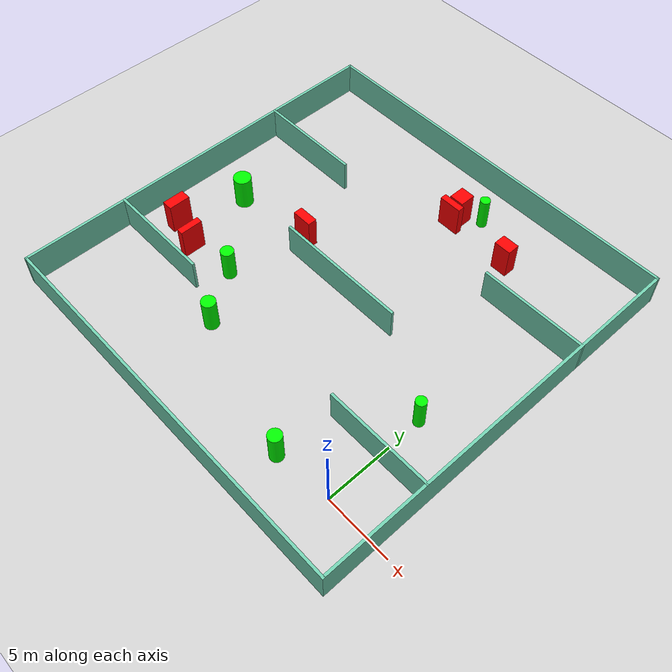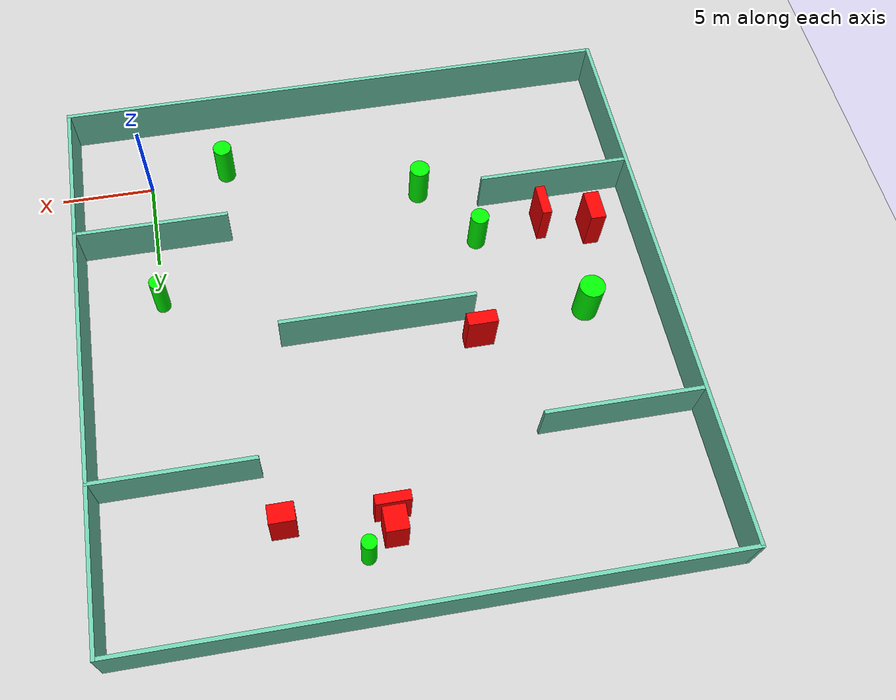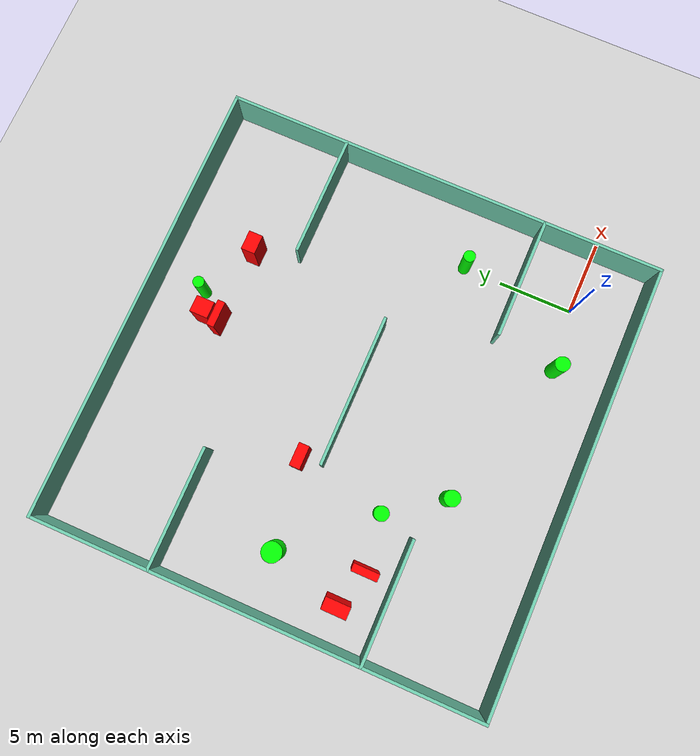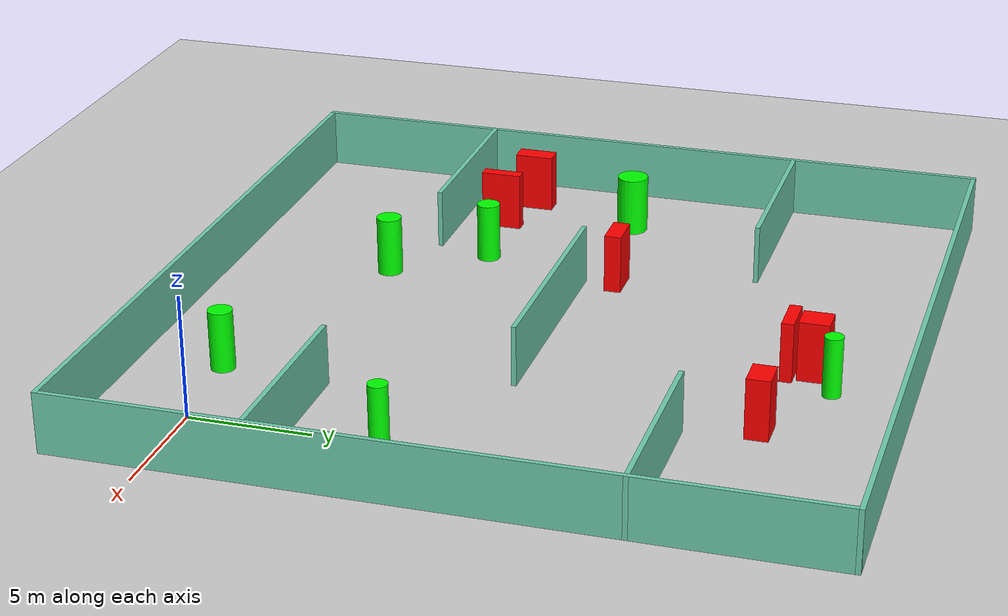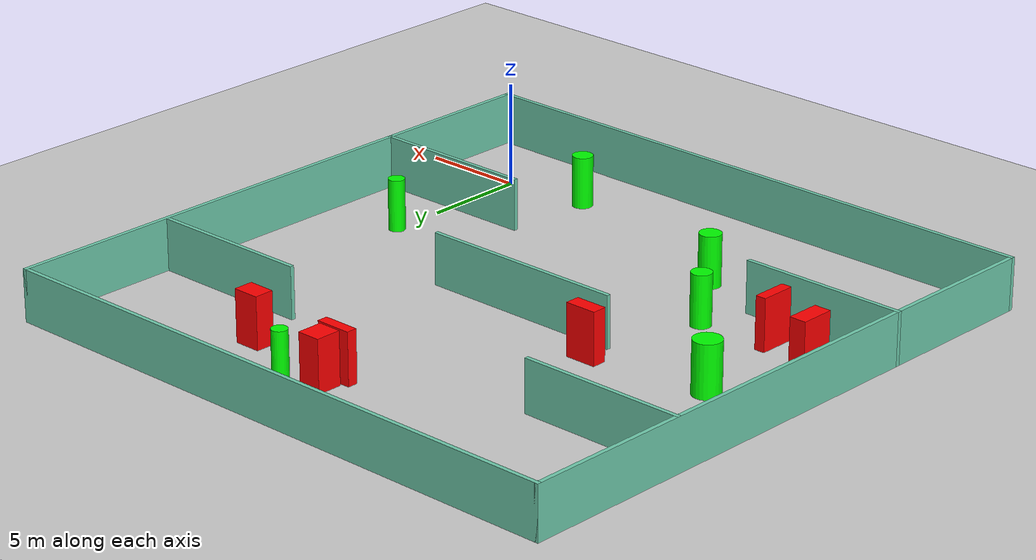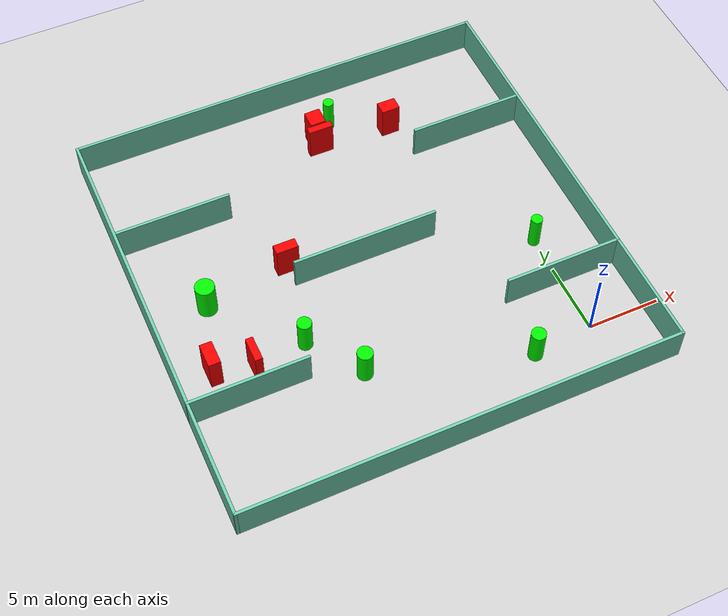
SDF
<sdf version="1.7">
 <world name="default">
  <light name="sun" type="directional">
   <pose>0 0 10 0 -0 0</pose>
   <diffuse>0.8 0.8 0.8 1</diffuse>
   <specular>0.2 0.2 0.2 1</specular>
   <attenuation>
    <range>1000</range>
    <constant>0.9</constant>
    <linear>0.01</linear>
    <quadratic>0.001</quadratic>
   </attenuation>
   <direction>-0.5 0.1 -0.9</direction>
   <spot><inner_angle>0</inner_angle><outer_angle>0</outer_angle><falloff>0</falloff></spot>
  </light>
  <model name="ground_plane">
   <static>1</static>
   <link name="link">
    <collision name="collision">
     <geometry><plane><normal>0 0 1</normal><size>100 100</size></plane></geometry>
     <surface>
      <contact><collide_bitmask>65535</collide_bitmask></contact>
      <friction><ode><mu>100</mu><mu2>50</mu2></ode></friction>
     </surface>
    </collision>
    <visual name="visual">
     <cast_shadows>0</cast_shadows>
     <geometry><plane><normal>0 0 1</normal><size>100 100</size></plane></geometry>
     <material>
      <script><uri>file://media/materials/scripts/gazebo.material</uri><name>Gazebo/Grey</name></script>
     </material>
    </visual>
   </link>
  </model>
  <gravity>0 0 -9.8</gravity>
  <magnetic_field>6e-06 2.3e-05 -4.2e-05</magnetic_field>
  <atmosphere type="adiabatic"/>
  <physics type="ode">
   <max_step_size>0.001</max_step_size>
   <real_time_factor>1</real_time_factor>
   <real_time_update_rate>1000</real_time_update_rate>
  </physics>
  <scene><ambient>0.4 0.4 0.4 1</ambient><background>0.7 0.7 0.7 1</background><shadows>1</shadows></scene>
  <spherical_coordinates>
   <surface_model>EARTH_WGS84</surface_model>
   <latitude_deg>0</latitude_deg>
   <longitude_deg>0</longitude_deg>
   <elevation>0</elevation>
   <heading_deg>0</heading_deg>
  </spherical_coordinates>
  <model name="my_base_walls">
   <link name="Wall_10">
    <collision name="Wall_10_Collision">
     <geometry><box><size>8.2 0.2 2.5</size></box></geometry>
     <pose>0 0 1.25 0 -0 0</pose>
    </collision>
    <visual name="Wall_10_Visual">
     <pose>0 0 1.25 0 -0 0</pose>
     <geometry><box><size>8.2 0.2 2.5</size></box></geometry>
     <material>
      <script><uri>file://media/materials/scripts/gazebo.material</uri><name>Gazebo/Grey</name></script>
      <ambient>0.435294 0.796078 0.67451 1</ambient>
     </material>
     <meta><layer>0</layer></meta>
    </visual>
    <pose>-11 -7 0 0 -0 0</pose>
   </link>
   <link name="Wall_12">
    <collision name="Wall_12_Collision">
     <geometry><box><size>8.2 0.2 2.5</size></box></geometry>
     <pose>0 0 1.25 0 -0 0</pose>
    </collision>
    <visual name="Wall_12_Visual">
     <pose>0 0 1.25 0 -0 0</pose>
     <geometry><box><size>8.2 0.2 2.5</size></box></geometry>
     <material>
      <script><uri>file://media/materials/scripts/gazebo.material</uri><name>Gazebo/Grey</name></script>
      <ambient>0.435294 0.796078 0.67451 1</ambient>
     </material>
     <meta><layer>0</layer></meta>
    </visual>
    <pose>-11 7 0 0 -0 0</pose>
   </link>
   <link name="Wall_14">
    <collision name="Wall_14_Collision">
     <geometry><box><size>8.2 0.2 2.5</size></box></geometry>
     <pose>0 0 1.25 0 -0 0</pose>
    </collision>
    <visual name="Wall_14_Visual">
     <pose>0 0 1.25 0 -0 0</pose>
     <geometry><box><size>8.2 0.2 2.5</size></box></geometry>
     <material>
      <script><uri>file://media/materials/scripts/gazebo.material</uri><name>Gazebo/Grey</name></script>
      <ambient>0.435294 0.796078 0.67451 1</ambient>
     </material>
     <meta><layer>0</layer></meta>
    </visual>
    <pose>11 7 0 0 -0 3.14159</pose>
   </link>
   <link name="Wall_16">
    <collision name="Wall_16_Collision">
     <geometry><box><size>10.2 0.2 2.5</size></box></geometry>
     <pose>0 0 1.25 0 -0 0</pose>
    </collision>
    <visual name="Wall_16_Visual">
     <pose>0 0 1.25 0 -0 0</pose>
     <geometry><box><size>10.2 0.2 2.5</size></box></geometry>
     <material>
      <script><uri>file://media/materials/scripts/gazebo.material</uri><name>Gazebo/Grey</name></script>
      <ambient>0.435294 0.796078 0.67451 1</ambient>
     </material>
     <meta><layer>0</layer></meta>
    </visual>
    <pose>0 0 0 0 -0 3.14159</pose>
   </link>
   <link name="Wall_2">
    <collision name="Wall_2_Collision">
     <geometry><box><size>30.2 0.2 2.5</size></box></geometry>
     <pose>0 0 1.25 0 -0 0</pose>
    </collision>
    <visual name="Wall_2_Visual">
     <pose>0 0 1.25 0 -0 0</pose>
     <geometry><box><size>30.2 0.2 2.5</size></box></geometry>
     <material>
      <script><uri>file://media/materials/scripts/gazebo.material</uri><name>Gazebo/Grey</name></script>
      <ambient>0.435294 0.796078 0.67451 1</ambient>
     </material>
     <meta><layer>0</layer></meta>
    </visual>
    <pose>0 -15 0 0 -0 3.14159</pose>
   </link>
   <link name="Wall_3">
    <collision name="Wall_3_Collision">
     <geometry><box><size>30.2 0.2 2.5</size></box></geometry>
     <pose>0 0 1.25 0 -0 0</pose>
    </collision>
    <visual name="Wall_3_Visual">
     <pose>0 0 1.25 0 -0 0</pose>
     <geometry><box><size>30.2 0.2 2.5</size></box></geometry>
     <material>
      <script><uri>file://media/materials/scripts/gazebo.material</uri><name>Gazebo/Grey</name></script>
      <ambient>0.435294 0.796078 0.67451 1</ambient>
     </material>
     <meta><layer>0</layer></meta>
    </visual>
    <pose>-15 0 0 0 -0 1.5708</pose>
   </link>
   <link name="Wall_4">
    <collision name="Wall_4_Collision">
     <geometry><box><size>30.2 0.2 2.5</size></box></geometry>
     <pose>0 0 1.25 0 -0 0</pose>
    </collision>
    <visual name="Wall_4_Visual">
     <pose>0 0 1.25 0 -0 0</pose>
     <geometry><box><size>30.2 0.2 2.5</size></box></geometry>
     <material>
      <script><uri>file://media/materials/scripts/gazebo.material</uri><name>Gazebo/Grey</name></script>
      <ambient>0.435294 0.796078 0.67451 1</ambient>
     </material>
     <meta><layer>0</layer></meta>
    </visual>
    <pose>0 15 0 0 -0 0</pose>
   </link>
   <link name="Wall_6">
    <collision name="Wall_6_Collision">
     <geometry><box><size>30.2 0.2 2.5</size></box></geometry>
     <pose>0 0 1.25 0 -0 0</pose>
    </collision>
    <visual name="Wall_6_Visual">
     <pose>0 0 1.25 0 -0 0</pose>
     <geometry><box><size>30.2 0.2 2.5</size></box></geometry>
     <material>
      <script><uri>file://media/materials/scripts/gazebo.material</uri><name>Gazebo/Grey</name></script>
      <ambient>0.435294 0.796078 0.67451 1</ambient>
     </material>
     <meta><layer>0</layer></meta>
    </visual>
    <pose>15 0 0 0 -0 1.5708</pose>
   </link>
   <link name="Wall_8">
    <collision name="Wall_8_Collision">
     <geometry><box><size>8.2 0.2 2.5</size></box></geometry>
     <pose>0 0 1.25 0 -0 0</pose>
    </collision>
    <visual name="Wall_8_Visual">
     <pose>0 0 1.25 0 -0 0</pose>
     <geometry><box><size>8.2 0.2 2.5</size></box></geometry>
     <material>
      <script><uri>file://media/materials/scripts/gazebo.material</uri><name>Gazebo/Grey</name></script>
      <ambient>0.435294 0.796078 0.67451 1</ambient>
     </material>
     <meta><layer>0</layer></meta>
    </visual>
    <pose>11 -7 0 0 -0 3.14159</pose>
   </link>
   <static>1</static>
   <pose>-11 11 0 0 -0 0</pose>
  </model>
  <model name="cylinder1">
   <static>1</static>
   <link name="link">
    <inertial>
     <mass>1</mass>
     <inertia><ixx>0.5</ixx><ixy>0</ixy><ixz>0</ixz><iyy>0.5</iyy><iyz>0</iyz><izz>1</izz></inertia>
    </inertial>
    <collision name="collision">
     <geometry><cylinder><radius>0.3931409869699758</radius><length>2.5</length></cylinder></geometry>
    </collision>
    <visual name="visual">
     <geometry><cylinder><radius>0.3931409869699758</radius><length>2.5</length></cylinder></geometry>
     <material>
      <ambient>0 1 0 1</ambient>
      <diffuse>0 1 0 1</diffuse>
      <specular>0.1 0.1 0.1 1</specular>
      <emissive>0 0 0 0</emissive>
     </material>
    </visual>
   </link>
   <pose>-0.03960006376901504 7.640238828242627 1.25 0 0 0</pose>
  </model>
  <model name="cylinder2">
   <static>1</static>
   <link name="link">
    <inertial>
     <mass>1</mass>
     <inertia><ixx>0.5</ixx><ixy>0</ixy><ixz>0</ixz><iyy>0.5</iyy><iyz>0</iyz><izz>1</izz></inertia>
    </inertial>
    <collision name="collision">
     <geometry><cylinder><radius>0.5269575968514407</radius><length>2.5</length></cylinder></geometry>
    </collision>
    <visual name="visual">
     <geometry><cylinder><radius>0.5269575968514407</radius><length>2.5</length></cylinder></geometry>
     <material>
      <ambient>0 1 0 1</ambient>
      <diffuse>0 1 0 1</diffuse>
      <specular>0.1 0.1 0.1 1</specular>
      <emissive>0 0 0 0</emissive>
     </material>
    </visual>
   </link>
   <pose>-14.735488850127595 2.8063637652928612 1.25 0 0 0</pose>
  </model>
  <model name="cylinder3">
   <static>1</static>
   <link name="link">
    <inertial>
     <mass>1</mass>
     <inertia><ixx>0.5</ixx><ixy>0</ixy><ixz>0</ixz><iyy>0.5</iyy><iyz>0</iyz><izz>1</izz></inertia>
    </inertial>
    <collision name="collision">
     <geometry><cylinder><radius>0.49659649543872975</radius><length>2.5</length></cylinder></geometry>
    </collision>
    <visual name="visual">
     <geometry><cylinder><radius>0.49659649543872975</radius><length>2.5</length></cylinder></geometry>
     <material>
      <ambient>0 1 0 1</ambient>
      <diffuse>0 1 0 1</diffuse>
      <specular>0.1 0.1 0.1 1</specular>
      <emissive>0 0 0 0</emissive>
     </material>
    </visual>
   </link>
   <pose>-4.249283066697908 -0.372880765740502 1.25 0 0 0</pose>
  </model>
  <model name="cylinder4">
   <static>1</static>
   <link name="link">
    <inertial>
     <mass>1</mass>
     <inertia><ixx>0.5</ixx><ixy>0</ixy><ixz>0</ixz><iyy>0.5</iyy><iyz>0</iyz><izz>1</izz></inertia>
    </inertial>
    <collision name="collision">
     <geometry><cylinder><radius>0.48660178888595473</radius><length>2.5</length></cylinder></geometry>
    </collision>
    <visual name="visual">
     <geometry><cylinder><radius>0.48660178888595473</radius><length>2.5</length></cylinder></geometry>
     <material>
      <ambient>0 1 0 1</ambient>
      <diffuse>0 1 0 1</diffuse>
      <specular>0.1 0.1 0.1 1</specular>
      <emissive>0 0 0 0</emissive>
     </material>
    </visual>
   </link>
   <pose>-17.301277741773767 6.399850684203759 1.25 0 0 0</pose>
  </model>
  <model name="cylinder5">
   <static>1</static>
   <link name="link">
    <inertial>
     <mass>1</mass>
     <inertia><ixx>0.5</ixx><ixy>0</ixy><ixz>0</ixz><iyy>0.5</iyy><iyz>0</iyz><izz>1</izz></inertia>
    </inertial>
    <collision name="collision">
     <geometry><cylinder><radius>0.37593936741964806</radius><length>2.5</length></cylinder></geometry>
    </collision>
    <visual name="visual">
     <geometry><cylinder><radius>0.37593936741964806</radius><length>2.5</length></cylinder></geometry>
     <material>
      <ambient>0 1 0 1</ambient>
      <diffuse>0 1 0 1</diffuse>
      <specular>0.1 0.1 0.1 1</specular>
      <emissive>0 0 0 0</emissive>
     </material>
    </visual>
   </link>
   <pose>-8.530811946198162 22.88362427884425 1.25 0 0 0</pose>
  </model>
  <model name="cylinder6">
   <static>1</static>
   <link name="link">
    <inertial>
     <mass>1</mass>
     <inertia><ixx>0.5</ixx><ixy>0</ixy><ixz>0</ixz><iyy>0.5</iyy><iyz>0</iyz><izz>1</izz></inertia>
    </inertial>
    <collision name="collision">
     <geometry><cylinder><radius>0.664398914170305</radius><length>2.5</length></cylinder></geometry>
    </collision>
    <visual name="visual">
     <geometry><cylinder><radius>0.664398914170305</radius><length>2.5</length></cylinder></geometry>
     <material>
      <ambient>0 1 0 1</ambient>
      <diffuse>0 1 0 1</diffuse>
      <specular>0.1 0.1 0.1 1</specular>
      <emissive>0 0 0 0</emissive>
     </material>
    </visual>
   </link>
   <pose>-22.048051907660223 11.574899455120342 1.25 0 0 0</pose>
  </model>
  <model name="box1">
   <static>1</static>
   <link name="link">
    <inertial>
     <mass>1</mass>
     <inertia><ixx>0.083</ixx><ixy>0</ixy><ixz>0</ixz><iyy>0.083</iyy><iyz>0</iyz><izz>0.083</izz></inertia>
    </inertial>
    <collision name="collision">
     <geometry><box><size>1.5466921899127706 0.7044252158178183 2.5</size></box></geometry>
    </collision>
    <visual name="visual">
     <geometry><box><size>1.5466921899127706 0.7044252158178183 2.5</size></box></geometry>
     <material>
      <ambient>1 0 0 1</ambient>
      <diffuse>1 0 0 1</diffuse>
      <specular>0.1 0.1 0.1 1</specular>
      <emissive>0 0 0 0</emissive>
     </material>
    </visual>
    <sensor name="my_contact" type="contact">
     <contact><collision>box_collision</collision><topic>__default_topic__</topic></contact>
    </sensor>
   </link>
   <pose>-16.08787396921158 12.424610282138826 1.25 0 0 0</pose>
  </model>
  <model name="box2">
   <static>1</static>
   <link name="link">
    <inertial>
     <mass>1</mass>
     <inertia><ixx>0.083</ixx><ixy>0</ixy><ixz>0</ixz><iyy>0.083</iyy><iyz>0</iyz><izz>0.083</izz></inertia>
    </inertial>
    <collision name="collision">
     <geometry><box><size>1.1230432722361243 1.2240438109405793 2.5</size></box></geometry>
    </collision>
    <visual name="visual">
     <geometry><box><size>1.1230432722361243 1.2240438109405793 2.5</size></box></geometry>
     <material>
      <ambient>1 0 0 1</ambient>
      <diffuse>1 0 0 1</diffuse>
      <specular>0.1 0.1 0.1 1</specular>
      <emissive>0 0 0 0</emissive>
     </material>
    </visual>
    <sensor name="my_contact" type="contact">
     <contact><collision>box_collision</collision><topic>__default_topic__</topic></contact>
    </sensor>
   </link>
   <pose>-9.925237624377921 21.969583879328425 1.25 0 0 0</pose>
  </model>
  <model name="box3">
   <static>1</static>
   <link name="link">
    <inertial>
     <mass>1</mass>
     <inertia><ixx>0.083</ixx><ixy>0</ixy><ixz>0</ixz><iyy>0.083</iyy><iyz>0</iyz><izz>0.083</izz></inertia>
    </inertial>
    <collision name="collision">
     <geometry><box><size>1.2980093404991158 0.9380815651264888 2.5</size></box></geometry>
    </collision>
    <visual name="visual">
     <geometry><box><size>1.2980093404991158 0.9380815651264888 2.5</size></box></geometry>
     <material>
      <ambient>1 0 0 1</ambient>
      <diffuse>1 0 0 1</diffuse>
      <specular>0.1 0.1 0.1 1</specular>
      <emissive>0 0 0 0</emissive>
     </material>
    </visual>
    <sensor name="my_contact" type="contact">
     <contact><collision>box_collision</collision><topic>__default_topic__</topic></contact>
    </sensor>
   </link>
   <pose>-4.771663916269921 20.86075050505743 1.25 0 0 0</pose>
  </model>
  <model name="box4">
   <static>1</static>
   <link name="link">
    <inertial>
     <mass>1</mass>
     <inertia><ixx>0.083</ixx><ixy>0</ixy><ixz>0</ixz><iyy>0.083</iyy><iyz>0</iyz><izz>0.083</izz></inertia>
    </inertial>
    <collision name="collision">
     <geometry><box><size>0.8214856205953653 1.662939401502516 2.5</size></box></geometry>
    </collision>
    <visual name="visual">
     <geometry><box><size>0.8214856205953653 1.662939401502516 2.5</size></box></geometry>
     <material>
      <ambient>1 0 0 1</ambient>
      <diffuse>1 0 0 1</diffuse>
      <specular>0.1 0.1 0.1 1</specular>
      <emissive>0 0 0 0</emissive>
     </material>
    </visual>
    <sensor name="my_contact" type="contact">
     <contact><collision>box_collision</collision><topic>__default_topic__</topic></contact>
    </sensor>
   </link>
   <pose>-23.49909662942675 6.709799991086264 1.25 0 0 0</pose>
  </model>
  <model name="box5">
   <static>1</static>
   <link name="link">
    <inertial>
     <mass>1</mass>
     <inertia><ixx>0.083</ixx><ixy>0</ixy><ixz>0</ixz><iyy>0.083</iyy><iyz>0</iyz><izz>0.083</izz></inertia>
    </inertial>
    <collision name="collision">
     <geometry><box><size>1.7531923276222432 0.5027444609504601 2.5</size></box></geometry>
    </collision>
    <visual name="visual">
     <geometry><box><size>1.7531923276222432 0.5027444609504601 2.5</size></box></geometry>
     <material>
      <ambient>1 0 0 1</ambient>
      <diffuse>1 0 0 1</diffuse>
      <specular>0.1 0.1 0.1 1</specular>
      <emissive>0 0 0 0</emissive>
     </material>
    </visual>
    <sensor name="my_contact" type="contact">
     <contact><collision>box_collision</collision><topic>__default_topic__</topic></contact>
    </sensor>
   </link>
   <pose>-9.972741101167145 20.982727092122225 1.25 0 0 0</pose>
  </model>
  <model name="box6">
   <static>1</static>
   <link name="link">
    <inertial>
     <mass>1</mass>
     <inertia><ixx>0.083</ixx><ixy>0</ixy><ixz>0</ixz><iyy>0.083</iyy><iyz>0</iyz><izz>0.083</izz></inertia>
    </inertial>
    <collision name="collision">
     <geometry><box><size>0.5119402277494371 1.7265204141998445 2.5</size></box></geometry>
    </collision>
    <visual name="visual">
     <geometry><box><size>0.5119402277494371 1.7265204141998445 2.5</size></box></geometry>
     <material>
      <ambient>1 0 0 1</ambient>
      <diffuse>1 0 0 1</diffuse>
      <specular>0.1 0.1 0.1 1</specular>
      <emissive>0 0 0 0</emissive>
     </material>
    </visual>
    <sensor name="my_contact" type="contact">
     <contact><collision>box_collision</collision><topic>__default_topic__</topic></contact>
    </sensor>
   </link>
   <pose>-20.891633645980722 5.920544378780178 1.25 0 0 0</pose>
  </model>
 </world>
</sdf>
